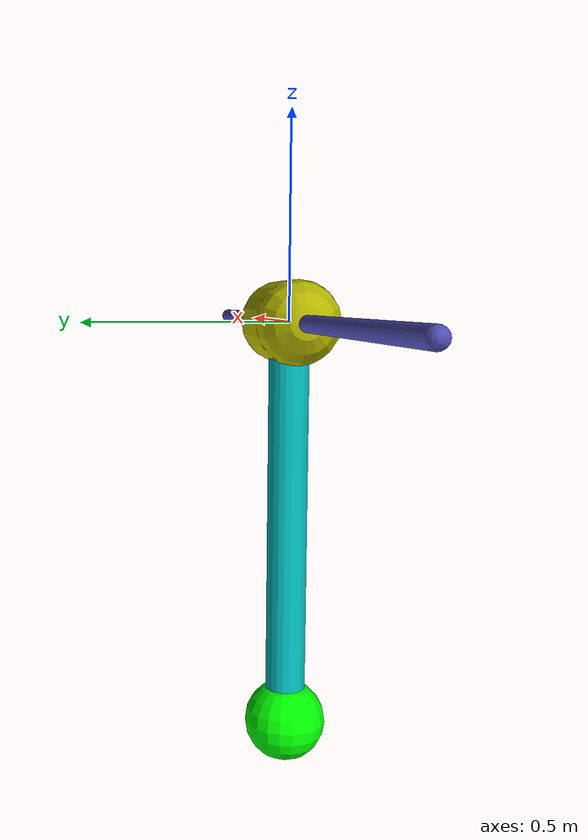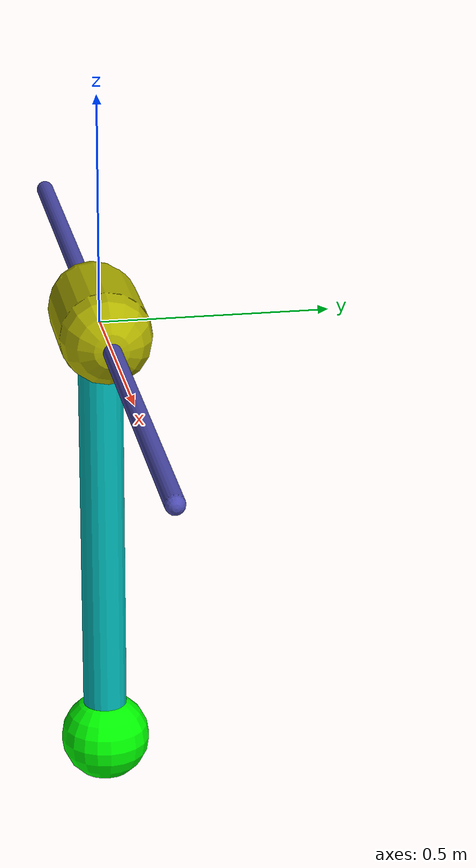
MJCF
<mujoco model="pendulum_cart">
	<compiler inertiafromgeom="true"/>
	<default>
		<joint armature="0" damping=".05" limited="true"/>
		<geom contype="0" friction="1 0.1 0.1" rgba="0.7 0.7 0 1"/>
		<tendon/>
		<motor ctrlrange="-3 3"/>
	</default>
	<option gravity="0 0 -9.81" integrator="RK4" timestep="0.02"/>
	<size nstack="3000"/>
	<worldbody>
		<!--geom name="ground" type="plane" pos="0 0 0" /-->
		<geom name="rail" pos="0 0 0" quat="0.707 0 0.707 0" rgba="0.3 0.3 0.7 1" size="0.02 1" type="capsule"/>
		<body name="cart" pos="0 0 0">
			<joint axis="1 0 0" limited="true" name="slider" pos="0 0 0" range="-1 1" type="slide"/>
			<geom name="cart" pos="0 0 0" quat="0.707 0 0.707 0" size="0.1 0.1" type="capsule" mass="0.1"/>
			<body name="pole" pos="0 0 0">
				<joint axis="0 -1 0" name="hinge" pos="0 0 0" range="-90 90" type="hinge"/>
				<geom fromto="0 0 0 0.001 0 -1" name="cpole" rgba="0 0.7 0.7 1" size="0.049 0.3" type="capsule" mass="0.1"/>
				<geom name="end_sphere" type="sphere" pos="0.001 0 -1" size="0.1" rgba="0 1 0 1" mass="0.06"/>
			</body>
		</body>
	</worldbody>
	<actuator>
		<motor ctrllimited="true" ctrlrange="-3 3" gear="100" joint="slider" name="slide"/>
	</actuator>
</mujoco>
